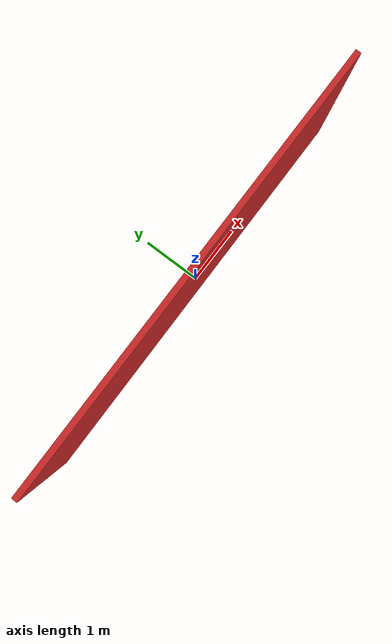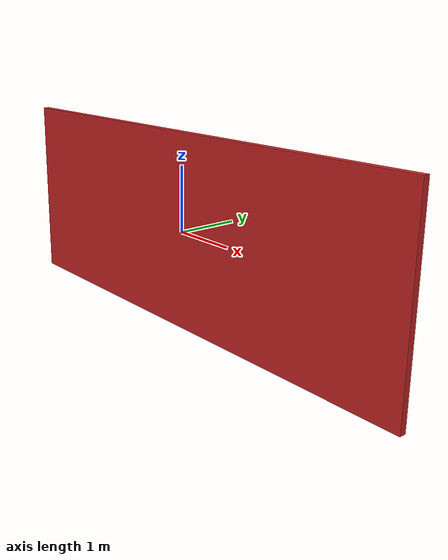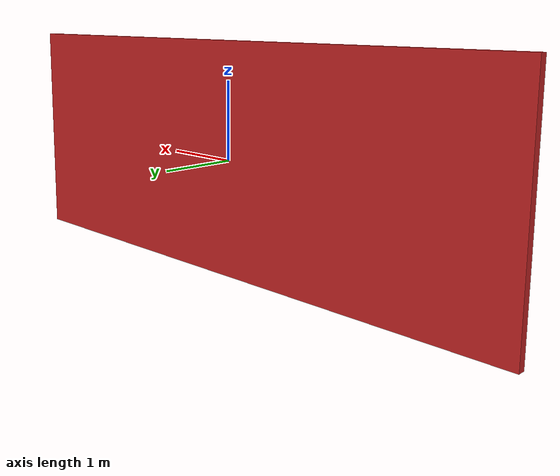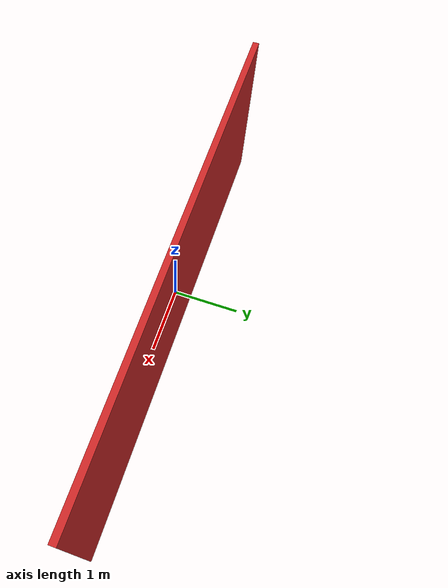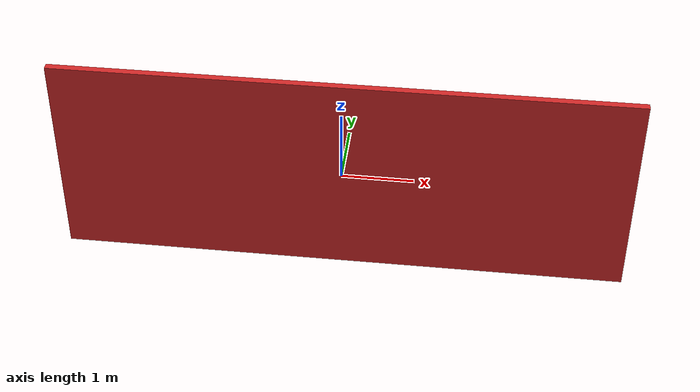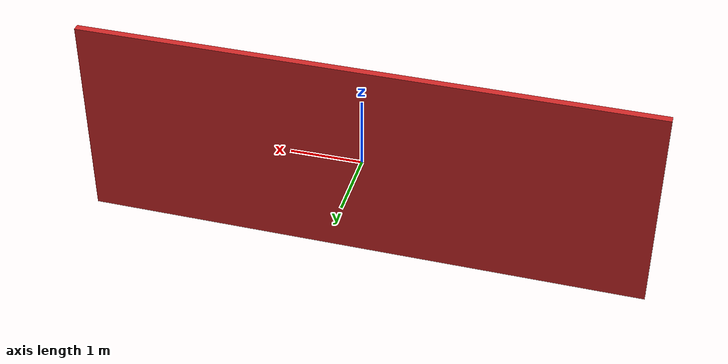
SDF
<?xml version="1.0" ?>
<sdf version="1.6">

  <!-- Parede com Logo do IFSC -->
  <model name="wall_IFSC">
    <static>true</static>
    <link name="link">
      <collision name="collision">
        <geometry>
          <box>
            <size>8 0.1 3</size>
          </box>
        </geometry>
      </collision>

      <visual name="visual">
        <geometry>
          <box>
            <size>8 0.1 3</size>
          </box>
        </geometry>
        <material>
          <script>
    	    <uri>model://parede_ifsc/materials/scripts</uri>
	    <uri>model://parede_ifsc/materials/textures</uri>
	    <name>parede_material</name>
          </script>
        </material>
      </visual>
    </link>
  </model>
</sdf>
